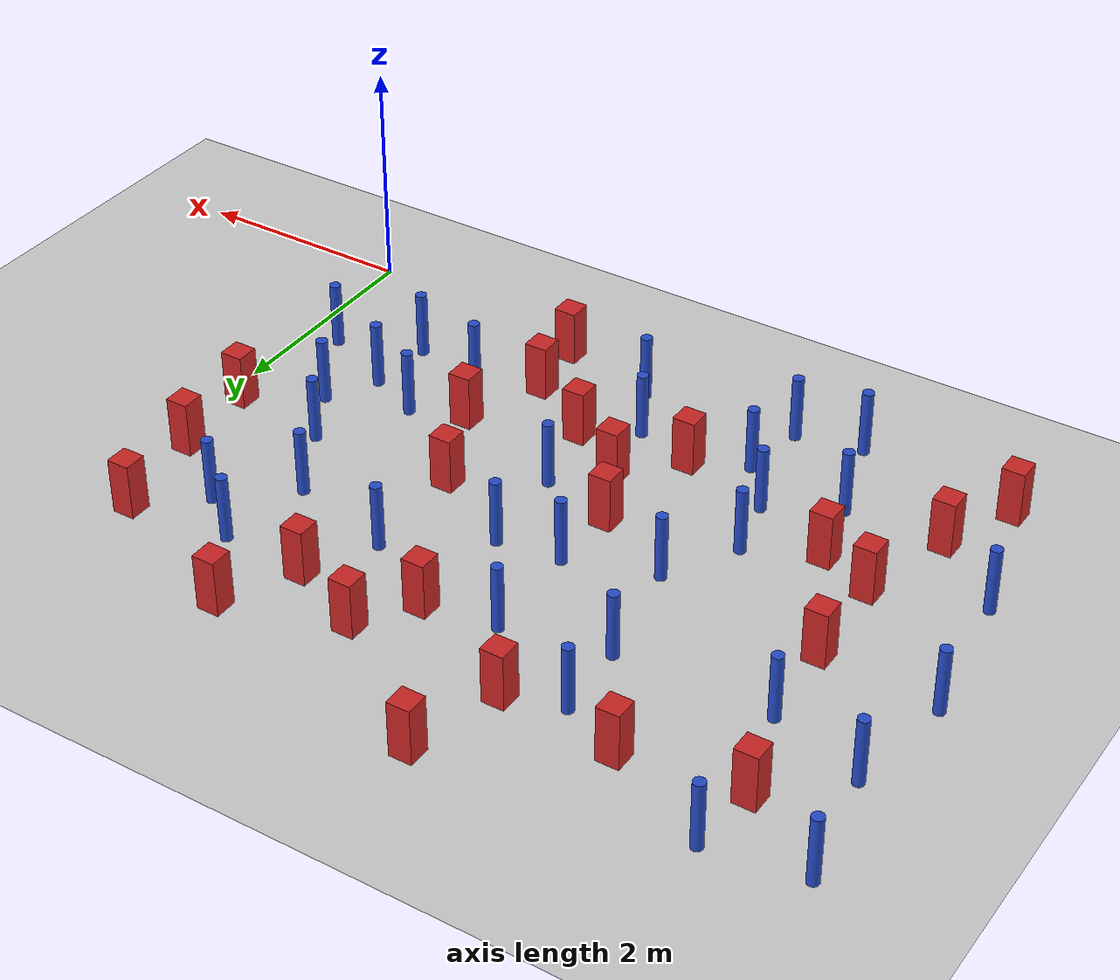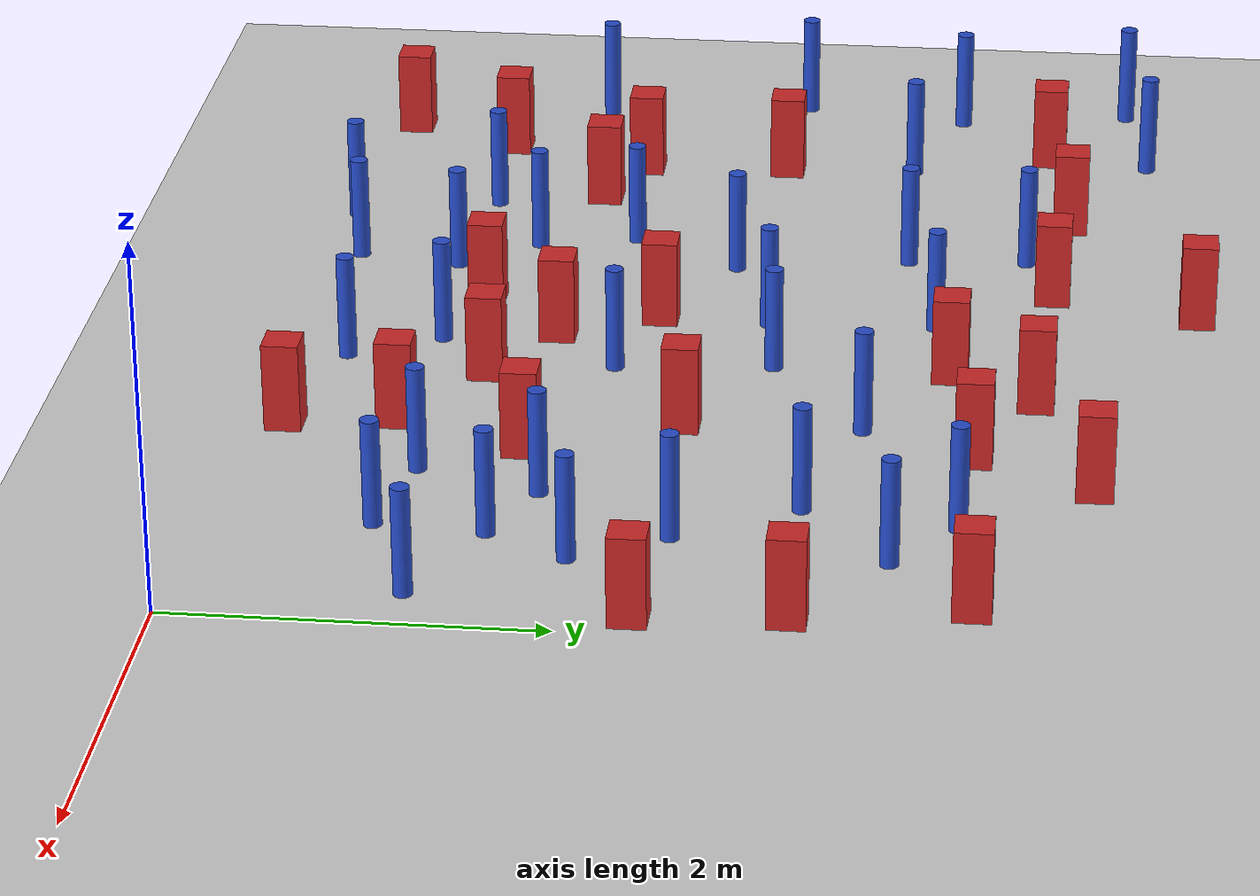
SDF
<sdf version="1.6">
 <world name="default">
  <model name="ground_plane">
   <static>1</static>
   <link name="link">
    <collision name="collision">
     <geometry><plane><normal>0 0 1</normal><size>100 100</size></plane></geometry>
     <surface><friction><ode><mu>100</mu><mu2>50</mu2></ode></friction></surface>
    </collision>
    <visual name="visual">
     <cast_shadows>0</cast_shadows>
     <geometry><plane><normal>0 0 1</normal><size>100 100</size></plane></geometry>
     <material>
      <ambient>1.0 1.0 1.0 1.0</ambient>
      <diffuse>0.8 0.8 0.8 1.0</diffuse>
      <specular>0.01 0.01 0.01 1.000000</specular>
     </material>
    </visual>
   </link>
  </model>
  <model name="pole_obstacle4">
   <static>true</static>
   <pose>-0.75053529397 1.97190595984 7.38925637345e-09 -8.47170692799e-08 1.24976765066e-08 -1.74513093016e-07</pose>
   <link name="link">
    <pose>0 0 0.3 0 -0 0</pose>
    <inertial>
     <mass>1</mass>
     <inertia><ixx>0.145833</ixx><ixy>0</ixy><ixz>0</ixz><iyy>0.145833</iyy><iyz>0</iyz><izz>0.125</izz></inertia>
    </inertial>
    <collision name="collision">
     <geometry><cylinder><radius>0.05</radius><length>.6</length></cylinder></geometry>
    </collision>
    <visual name="visual">
     <geometry><cylinder><radius>0.05</radius><length>.6</length></cylinder></geometry>
     <material>
      <script><name>Gazebo/Blue</name><uri>file://media/materials/scripts/gazebo.material</uri></script>
     </material>
    </visual>
   </link>
  </model>
  <model name="square_post_obstacle9">
   <static>true</static>
   <pose>-2.74050162465 4.29068194543 1.91545236811e-07 -7.35059704564e-06 1.12565212e-07 2.39332434364e-05</pose>
   <link name="link">
    <pose>0 0 0.25 0 -0 0</pose>
    <inertial>
     <mass>100</mass>
     <inertia>
      <ixx>0.166667</ixx>
      <ixy>0</ixy>
      <ixz>0</ixz>
      <iyy>0.166667</iyy>
      <iyz>0</iyz>
      <izz>0.166667</izz>
     </inertia>
    </inertial>
    <collision name="collision"><geometry><box><size>.2 .2 .5</size></box></geometry></collision>
    <visual name="visual">
     <geometry><box><size>.2 .2 .5</size></box></geometry>
     <material>
      <script><name>Gazebo/Red</name><uri>file://media/materials/scripts/gazebo.material</uri></script>
     </material>
    </visual>
   </link>
  </model>
  <model name="square_post_obstacle11">
   <static>true</static>
   <pose>-6.36342929081 0.339561308146 1.91545236811e-07 -7.35059704564e-06 1.12565212e-07 2.39332434364e-05</pose>
   <link name="link">
    <pose>0 0 0.25 0 -0 0</pose>
    <inertial>
     <mass>100</mass>
     <inertia>
      <ixx>0.166667</ixx>
      <ixy>0</ixy>
      <ixz>0</ixz>
      <iyy>0.166667</iyy>
      <iyz>0</iyz>
      <izz>0.166667</izz>
     </inertia>
    </inertial>
    <collision name="collision"><geometry><box><size>.2 .2 .5</size></box></geometry></collision>
    <visual name="visual">
     <geometry><box><size>.2 .2 .5</size></box></geometry>
     <material>
      <script><name>Gazebo/Red</name><uri>file://media/materials/scripts/gazebo.material</uri></script>
     </material>
    </visual>
   </link>
  </model>
  <model name="pole_obstacle12">
   <static>true</static>
   <pose>-4.62292605062 1.33828571062 7.38925637345e-09 -8.471706928e-08 1.24976765134e-08 -1.74513093015e-07</pose>
   <link name="link">
    <pose>0 0 0.3 0 -0 0</pose>
    <inertial>
     <mass>1</mass>
     <inertia><ixx>0.145833</ixx><ixy>0</ixy><ixz>0</ixz><iyy>0.145833</iyy><iyz>0</iyz><izz>0.125</izz></inertia>
    </inertial>
    <collision name="collision">
     <geometry><cylinder><radius>0.05</radius><length>.6</length></cylinder></geometry>
    </collision>
    <visual name="visual">
     <geometry><cylinder><radius>0.05</radius><length>.6</length></cylinder></geometry>
     <material>
      <script><name>Gazebo/Blue</name><uri>file://media/materials/scripts/gazebo.material</uri></script>
     </material>
    </visual>
   </link>
  </model>
  <model name="square_post_obstacle24">
   <static>true</static>
   <pose>-2.14720096334 0.276899954422 1.91545236811e-07 -7.35059704564e-06 1.12565212e-07 2.39332434364e-05</pose>
   <link name="link">
    <pose>0 0 0.25 0 -0 0</pose>
    <inertial>
     <mass>100</mass>
     <inertia>
      <ixx>0.166667</ixx>
      <ixy>0</ixy>
      <ixz>0</ixz>
      <iyy>0.166667</iyy>
      <iyz>0</iyz>
      <izz>0.166667</izz>
     </inertia>
    </inertial>
    <collision name="collision"><geometry><box><size>.2 .2 .5</size></box></geometry></collision>
    <visual name="visual">
     <geometry><box><size>.2 .2 .5</size></box></geometry>
     <material>
      <script><name>Gazebo/Red</name><uri>file://media/materials/scripts/gazebo.material</uri></script>
     </material>
    </visual>
   </link>
  </model>
  <model name="square_post_obstacle29">
   <static>true</static>
   <pose>-0.156257540047 2.35726194431 1.91545236811e-07 -7.35059704564e-06 1.12565212e-07 2.39332434364e-05</pose>
   <link name="link">
    <pose>0 0 0.25 0 -0 0</pose>
    <inertial>
     <mass>100</mass>
     <inertia>
      <ixx>0.166667</ixx>
      <ixy>0</ixy>
      <ixz>0</ixz>
      <iyy>0.166667</iyy>
      <iyz>0</iyz>
      <izz>0.166667</izz>
     </inertia>
    </inertial>
    <collision name="collision"><geometry><box><size>.2 .2 .5</size></box></geometry></collision>
    <visual name="visual">
     <geometry><box><size>.2 .2 .5</size></box></geometry>
     <material>
      <script><name>Gazebo/Red</name><uri>file://media/materials/scripts/gazebo.material</uri></script>
     </material>
    </visual>
   </link>
  </model>
  <model name="square_post_obstacle31">
   <static>true</static>
   <pose>-2.31864801103 2.40004000269 1.91545236811e-07 -7.35059704564e-06 1.12565212e-07 2.39332434364e-05</pose>
   <link name="link">
    <pose>0 0 0.25 0 -0 0</pose>
    <inertial>
     <mass>100</mass>
     <inertia>
      <ixx>0.166667</ixx>
      <ixy>0</ixy>
      <ixz>0</ixz>
      <iyy>0.166667</iyy>
      <iyz>0</iyz>
      <izz>0.166667</izz>
     </inertia>
    </inertial>
    <collision name="collision"><geometry><box><size>.2 .2 .5</size></box></geometry></collision>
    <visual name="visual">
     <geometry><box><size>.2 .2 .5</size></box></geometry>
     <material>
      <script><name>Gazebo/Red</name><uri>file://media/materials/scripts/gazebo.material</uri></script>
     </material>
    </visual>
   </link>
  </model>
  <model name="pole_obstacle24">
   <static>true</static>
   <pose>-1.40132719874 3.11840262572 7.38925637345e-09 -8.47170692799e-08 1.24976765053e-08 -1.74513093017e-07</pose>
   <link name="link">
    <pose>0 0 0.3 0 -0 0</pose>
    <inertial>
     <mass>1</mass>
     <inertia><ixx>0.145833</ixx><ixy>0</ixy><ixz>0</ixz><iyy>0.145833</iyy><iyz>0</iyz><izz>0.125</izz></inertia>
    </inertial>
    <collision name="collision">
     <geometry><cylinder><radius>0.05</radius><length>.6</length></cylinder></geometry>
    </collision>
    <visual name="visual">
     <geometry><cylinder><radius>0.05</radius><length>.6</length></cylinder></geometry>
     <material>
      <script><name>Gazebo/Blue</name><uri>file://media/materials/scripts/gazebo.material</uri></script>
     </material>
    </visual>
   </link>
  </model>
  <model name="square_post_obstacle45">
   <static>true</static>
   <pose>-5.86912737096 2.69661752641 1.91545236811e-07 -7.35059704564e-06 1.12565212e-07 2.39332434364e-05</pose>
   <link name="link">
    <pose>0 0 0.25 0 -0 0</pose>
    <inertial>
     <mass>100</mass>
     <inertia>
      <ixx>0.166667</ixx>
      <ixy>0</ixy>
      <ixz>0</ixz>
      <iyy>0.166667</iyy>
      <iyz>0</iyz>
      <izz>0.166667</izz>
     </inertia>
    </inertial>
    <collision name="collision"><geometry><box><size>.2 .2 .5</size></box></geometry></collision>
    <visual name="visual">
     <geometry><box><size>.2 .2 .5</size></box></geometry>
     <material>
      <script><name>Gazebo/Red</name><uri>file://media/materials/scripts/gazebo.material</uri></script>
     </material>
    </visual>
   </link>
  </model>
  <model name="square_post_obstacle50">
   <static>true</static>
   <pose>-2.05113072157 3.9813883755 1.91545236811e-07 -7.35059704564e-06 1.12565212e-07 2.39332434364e-05</pose>
   <link name="link">
    <pose>0 0 0.25 0 -0 0</pose>
    <inertial>
     <mass>100</mass>
     <inertia>
      <ixx>0.166667</ixx>
      <ixy>0</ixy>
      <ixz>0</ixz>
      <iyy>0.166667</iyy>
      <iyz>0</iyz>
      <izz>0.166667</izz>
     </inertia>
    </inertial>
    <collision name="collision"><geometry><box><size>.2 .2 .5</size></box></geometry></collision>
    <visual name="visual">
     <geometry><box><size>.2 .2 .5</size></box></geometry>
     <material>
      <script><name>Gazebo/Red</name><uri>file://media/materials/scripts/gazebo.material</uri></script>
     </material>
    </visual>
   </link>
  </model>
  <model name="square_post_obstacle54">
   <static>true</static>
   <pose>-3.90718365929 5.16577436458 1.91545236811e-07 -7.35059704564e-06 1.12565212e-07 2.39332434364e-05</pose>
   <link name="link">
    <pose>0 0 0.25 0 -0 0</pose>
    <inertial>
     <mass>100</mass>
     <inertia>
      <ixx>0.166667</ixx>
      <ixy>0</ixy>
      <ixz>0</ixz>
      <iyy>0.166667</iyy>
      <iyz>0</iyz>
      <izz>0.166667</izz>
     </inertia>
    </inertial>
    <collision name="collision"><geometry><box><size>.2 .2 .5</size></box></geometry></collision>
    <visual name="visual">
     <geometry><box><size>.2 .2 .5</size></box></geometry>
     <material>
      <script><name>Gazebo/Red</name><uri>file://media/materials/scripts/gazebo.material</uri></script>
     </material>
    </visual>
   </link>
  </model>
  <model name="pole_obstacle54">
   <static>true</static>
   <pose>-4.57522564573 3.50415640879 7.38925637345e-09 -8.47170692798e-08 1.24976764937e-08 -1.74513093023e-07</pose>
   <link name="link">
    <pose>0 0 0.3 0 -0 0</pose>
    <inertial>
     <mass>1</mass>
     <inertia><ixx>0.145833</ixx><ixy>0</ixy><ixz>0</ixz><iyy>0.145833</iyy><iyz>0</iyz><izz>0.125</izz></inertia>
    </inertial>
    <collision name="collision">
     <geometry><cylinder><radius>0.05</radius><length>.6</length></cylinder></geometry>
    </collision>
    <visual name="visual">
     <geometry><cylinder><radius>0.05</radius><length>.6</length></cylinder></geometry>
     <material>
      <script><name>Gazebo/Blue</name><uri>file://media/materials/scripts/gazebo.material</uri></script>
     </material>
    </visual>
   </link>
  </model>
  <model name="pole_obstacle57">
   <static>true</static>
   <pose>-1.67618679546 1.06916677958 7.38925637345e-09 -8.471706928e-08 1.24976765079e-08 -1.74513093017e-07</pose>
   <link name="link">
    <pose>0 0 0.3 0 -0 0</pose>
    <inertial>
     <mass>1</mass>
     <inertia><ixx>0.145833</ixx><ixy>0</ixy><ixz>0</ixz><iyy>0.145833</iyy><iyz>0</iyz><izz>0.125</izz></inertia>
    </inertial>
    <collision name="collision">
     <geometry><cylinder><radius>0.05</radius><length>.6</length></cylinder></geometry>
    </collision>
    <visual name="visual">
     <geometry><cylinder><radius>0.05</radius><length>.6</length></cylinder></geometry>
     <material>
      <script><name>Gazebo/Blue</name><uri>file://media/materials/scripts/gazebo.material</uri></script>
     </material>
    </visual>
   </link>
  </model>
  <model name="square_post_obstacle65">
   <static>true</static>
   <pose>-1.94325476517 1.58443841942 1.91545236811e-07 -7.35059704564e-06 1.12565212e-07 2.39332434364e-05</pose>
   <link name="link">
    <pose>0 0 0.25 0 -0 0</pose>
    <inertial>
     <mass>100</mass>
     <inertia>
      <ixx>0.166667</ixx>
      <ixy>0</ixy>
      <ixz>0</ixz>
      <iyy>0.166667</iyy>
      <iyz>0</iyz>
      <izz>0.166667</izz>
     </inertia>
    </inertial>
    <collision name="collision"><geometry><box><size>.2 .2 .5</size></box></geometry></collision>
    <visual name="visual">
     <geometry><box><size>.2 .2 .5</size></box></geometry>
     <material>
      <script><name>Gazebo/Red</name><uri>file://media/materials/scripts/gazebo.material</uri></script>
     </material>
    </visual>
   </link>
  </model>
  <model name="pole_obstacle64">
   <static>true</static>
   <pose>-4.2951970392 0.903173799367 7.38925637345e-09 -8.47170692799e-08 1.24976765038e-08 -1.74513093018e-07</pose>
   <link name="link">
    <pose>0 0 0.3 0 -0 0</pose>
    <inertial>
     <mass>1</mass>
     <inertia><ixx>0.145833</ixx><ixy>0</ixy><ixz>0</ixz><iyy>0.145833</iyy><iyz>0</iyz><izz>0.125</izz></inertia>
    </inertial>
    <collision name="collision">
     <geometry><cylinder><radius>0.05</radius><length>.6</length></cylinder></geometry>
    </collision>
    <visual name="visual">
     <geometry><cylinder><radius>0.05</radius><length>.6</length></cylinder></geometry>
     <material>
      <script><name>Gazebo/Blue</name><uri>file://media/materials/scripts/gazebo.material</uri></script>
     </material>
    </visual>
   </link>
  </model>
  <model name="square_post_obstacle72">
   <static>true</static>
   <pose>-5.15905597445 4.42697742856 1.91545236811e-07 -7.35059704564e-06 1.12565212e-07 2.39332434364e-05</pose>
   <link name="link">
    <pose>0 0 0.25 0 -0 0</pose>
    <inertial>
     <mass>100</mass>
     <inertia>
      <ixx>0.166667</ixx>
      <ixy>0</ixy>
      <ixz>0</ixz>
      <iyy>0.166667</iyy>
      <iyz>0</iyz>
      <izz>0.166667</izz>
     </inertia>
    </inertial>
    <collision name="collision"><geometry><box><size>.2 .2 .5</size></box></geometry></collision>
    <visual name="visual">
     <geometry><box><size>.2 .2 .5</size></box></geometry>
     <material>
      <script><name>Gazebo/Red</name><uri>file://media/materials/scripts/gazebo.material</uri></script>
     </material>
    </visual>
   </link>
  </model>
  <model name="square_post_obstacle74">
   <static>true</static>
   <pose>-3.83693648597 1.13790932641 1.91545236811e-07 -7.35059704564e-06 1.12565212e-07 2.39332434364e-05</pose>
   <link name="link">
    <pose>0 0 0.25 0 -0 0</pose>
    <inertial>
     <mass>100</mass>
     <inertia>
      <ixx>0.166667</ixx>
      <ixy>0</ixy>
      <ixz>0</ixz>
      <iyy>0.166667</iyy>
      <iyz>0</iyz>
      <izz>0.166667</izz>
     </inertia>
    </inertial>
    <collision name="collision"><geometry><box><size>.2 .2 .5</size></box></geometry></collision>
    <visual name="visual">
     <geometry><box><size>.2 .2 .5</size></box></geometry>
     <material>
      <script><name>Gazebo/Red</name><uri>file://media/materials/scripts/gazebo.material</uri></script>
     </material>
    </visual>
   </link>
  </model>
  <model name="pole_obstacle72">
   <static>true</static>
   <pose>-4.96477721161 0.195381901351 7.38925637345e-09 -8.471706928e-08 1.24976765151e-08 -1.74513093014e-07</pose>
   <link name="link">
    <pose>0 0 0.3 0 -0 0</pose>
    <inertial>
     <mass>1</mass>
     <inertia><ixx>0.145833</ixx><ixy>0</ixy><ixz>0</ixz><iyy>0.145833</iyy><iyz>0</iyz><izz>0.125</izz></inertia>
    </inertial>
    <collision name="collision">
     <geometry><cylinder><radius>0.05</radius><length>.6</length></cylinder></geometry>
    </collision>
    <visual name="visual">
     <geometry><cylinder><radius>0.05</radius><length>.6</length></cylinder></geometry>
     <material>
      <script><name>Gazebo/Blue</name><uri>file://media/materials/scripts/gazebo.material</uri></script>
     </material>
    </visual>
   </link>
  </model>
  <model name="pole_obstacle73">
   <static>true</static>
   <pose>-4.38709843425 0.314621887469 7.38925637345e-09 -8.47170692798e-08 1.24976765003e-08 -1.7451309302e-07</pose>
   <link name="link">
    <pose>0 0 0.3 0 -0 0</pose>
    <inertial>
     <mass>1</mass>
     <inertia><ixx>0.145833</ixx><ixy>0</ixy><ixz>0</ixz><iyy>0.145833</iyy><iyz>0</iyz><izz>0.125</izz></inertia>
    </inertial>
    <collision name="collision">
     <geometry><cylinder><radius>0.05</radius><length>.6</length></cylinder></geometry>
    </collision>
    <visual name="visual">
     <geometry><cylinder><radius>0.05</radius><length>.6</length></cylinder></geometry>
     <material>
      <script><name>Gazebo/Blue</name><uri>file://media/materials/scripts/gazebo.material</uri></script>
     </material>
    </visual>
   </link>
  </model>
  <model name="pole_obstacle79">
   <static>true</static>
   <pose>-3.08736341742 2.83496775026 7.38925637345e-09 -8.47170692798e-08 1.24976764939e-08 -1.74513093025e-07</pose>
   <link name="link">
    <pose>0 0 0.3 0 -0 0</pose>
    <inertial>
     <mass>1</mass>
     <inertia><ixx>0.145833</ixx><ixy>0</ixy><ixz>0</ixz><iyy>0.145833</iyy><iyz>0</iyz><izz>0.125</izz></inertia>
    </inertial>
    <collision name="collision">
     <geometry><cylinder><radius>0.05</radius><length>.6</length></cylinder></geometry>
    </collision>
    <visual name="visual">
     <geometry><cylinder><radius>0.05</radius><length>.6</length></cylinder></geometry>
     <material>
      <script><name>Gazebo/Blue</name><uri>file://media/materials/scripts/gazebo.material</uri></script>
     </material>
    </visual>
   </link>
  </model>
  <model name="square_post_obstacle78">
   <static>true</static>
   <pose>-2.23327106368 0.869202071408 1.91545236811e-07 -7.35059704564e-06 1.12565212e-07 2.39332434364e-05</pose>
   <link name="link">
    <pose>0 0 0.25 0 -0 0</pose>
    <inertial>
     <mass>100</mass>
     <inertia>
      <ixx>0.166667</ixx>
      <ixy>0</ixy>
      <ixz>0</ixz>
      <iyy>0.166667</iyy>
      <iyz>0</iyz>
      <izz>0.166667</izz>
     </inertia>
    </inertial>
    <collision name="collision"><geometry><box><size>.2 .2 .5</size></box></geometry></collision>
    <visual name="visual">
     <geometry><box><size>.2 .2 .5</size></box></geometry>
     <material>
      <script><name>Gazebo/Red</name><uri>file://media/materials/scripts/gazebo.material</uri></script>
     </material>
    </visual>
   </link>
  </model>
  <model name="pole_obstacle85">
   <static>true</static>
   <pose>-5.91340965436 3.46501152392 7.38925637345e-09 -8.47170692798e-08 1.24976764937e-08 -1.74513093023e-07</pose>
   <link name="link">
    <pose>0 0 0.3 0 -0 0</pose>
    <inertial>
     <mass>1</mass>
     <inertia><ixx>0.145833</ixx><ixy>0</ixy><ixz>0</ixz><iyy>0.145833</iyy><iyz>0</iyz><izz>0.125</izz></inertia>
    </inertial>
    <collision name="collision">
     <geometry><cylinder><radius>0.05</radius><length>.6</length></cylinder></geometry>
    </collision>
    <visual name="visual">
     <geometry><cylinder><radius>0.05</radius><length>.6</length></cylinder></geometry>
     <material>
      <script><name>Gazebo/Blue</name><uri>file://media/materials/scripts/gazebo.material</uri></script>
     </material>
    </visual>
   </link>
  </model>
  <model name="square_post_obstacle81">
   <static>true</static>
   <pose>-6.07745499159 0.99381337129 1.91545236811e-07 -7.35059704564e-06 1.12565212e-07 2.39332434364e-05</pose>
   <link name="link">
    <pose>0 0 0.25 0 -0 0</pose>
    <inertial>
     <mass>100</mass>
     <inertia>
      <ixx>0.166667</ixx>
      <ixy>0</ixy>
      <ixz>0</ixz>
      <iyy>0.166667</iyy>
      <iyz>0</iyz>
      <izz>0.166667</izz>
     </inertia>
    </inertial>
    <collision name="collision"><geometry><box><size>.2 .2 .5</size></box></geometry></collision>
    <visual name="visual">
     <geometry><box><size>.2 .2 .5</size></box></geometry>
     <material>
      <script><name>Gazebo/Red</name><uri>file://media/materials/scripts/gazebo.material</uri></script>
     </material>
    </visual>
   </link>
  </model>
  <model name="square_post_obstacle82">
   <static>true</static>
   <pose>-3.06060975111 3.8110474315 1.91545236811e-07 -7.35059704564e-06 1.12565212e-07 2.39332434364e-05</pose>
   <link name="link">
    <pose>0 0 0.25 0 -0 0</pose>
    <inertial>
     <mass>100</mass>
     <inertia>
      <ixx>0.166667</ixx>
      <ixy>0</ixy>
      <ixz>0</ixz>
      <iyy>0.166667</iyy>
      <iyz>0</iyz>
      <izz>0.166667</izz>
     </inertia>
    </inertial>
    <collision name="collision"><geometry><box><size>.2 .2 .5</size></box></geometry></collision>
    <visual name="visual">
     <geometry><box><size>.2 .2 .5</size></box></geometry>
     <material>
      <script><name>Gazebo/Red</name><uri>file://media/materials/scripts/gazebo.material</uri></script>
     </material>
    </visual>
   </link>
  </model>
  <model name="pole_obstacle90">
   <static>true</static>
   <pose>-6.70700598225 1.5238169817 7.38925637345e-09 -8.471706928e-08 1.24976765134e-08 -1.74513093015e-07</pose>
   <link name="link">
    <pose>0 0 0.3 0 -0 0</pose>
    <inertial>
     <mass>1</mass>
     <inertia><ixx>0.145833</ixx><ixy>0</ixy><ixz>0</ixz><iyy>0.145833</iyy><iyz>0</iyz><izz>0.125</izz></inertia>
    </inertial>
    <collision name="collision">
     <geometry><cylinder><radius>0.05</radius><length>.6</length></cylinder></geometry>
    </collision>
    <visual name="visual">
     <geometry><cylinder><radius>0.05</radius><length>.6</length></cylinder></geometry>
     <material>
      <script><name>Gazebo/Blue</name><uri>file://media/materials/scripts/gazebo.material</uri></script>
     </material>
    </visual>
   </link>
  </model>
  <model name="pole_obstacle92">
   <static>true</static>
   <pose>-4.39818850485 2.51587769652 7.38925637345e-09 -8.47170692798e-08 1.24976764937e-08 -1.74513093023e-07</pose>
   <link name="link">
    <pose>0 0 0.3 0 -0 0</pose>
    <inertial>
     <mass>1</mass>
     <inertia><ixx>0.145833</ixx><ixy>0</ixy><ixz>0</ixz><iyy>0.145833</iyy><iyz>0</iyz><izz>0.125</izz></inertia>
    </inertial>
    <collision name="collision">
     <geometry><cylinder><radius>0.05</radius><length>.6</length></cylinder></geometry>
    </collision>
    <visual name="visual">
     <geometry><cylinder><radius>0.05</radius><length>.6</length></cylinder></geometry>
     <material>
      <script><name>Gazebo/Blue</name><uri>file://media/materials/scripts/gazebo.material</uri></script>
     </material>
    </visual>
   </link>
  </model>
  <model name="pole_obstacle94">
   <static>true</static>
   <pose>-3.64505518364 2.76328638376 7.38925637345e-09 -8.47170692798e-08 1.24976764939e-08 -1.74513093025e-07</pose>
   <link name="link">
    <pose>0 0 0.3 0 -0 0</pose>
    <inertial>
     <mass>1</mass>
     <inertia><ixx>0.145833</ixx><ixy>0</ixy><ixz>0</ixz><iyy>0.145833</iyy><iyz>0</iyz><izz>0.125</izz></inertia>
    </inertial>
    <collision name="collision">
     <geometry><cylinder><radius>0.05</radius><length>.6</length></cylinder></geometry>
    </collision>
    <visual name="visual">
     <geometry><cylinder><radius>0.05</radius><length>.6</length></cylinder></geometry>
     <material>
      <script><name>Gazebo/Blue</name><uri>file://media/materials/scripts/gazebo.material</uri></script>
     </material>
    </visual>
   </link>
  </model>
  <model name="square_post_obstacle87">
   <static>true</static>
   <pose>-2.86172564171 1.268861844 1.91545236811e-07 -7.35059704564e-06 1.12565212e-07 2.39332434364e-05</pose>
   <link name="link">
    <pose>0 0 0.25 0 -0 0</pose>
    <inertial>
     <mass>100</mass>
     <inertia>
      <ixx>0.166667</ixx>
      <ixy>0</ixy>
      <ixz>0</ixz>
      <iyy>0.166667</iyy>
      <iyz>0</iyz>
      <izz>0.166667</izz>
     </inertia>
    </inertial>
    <collision name="collision"><geometry><box><size>.2 .2 .5</size></box></geometry></collision>
    <visual name="visual">
     <geometry><box><size>.2 .2 .5</size></box></geometry>
     <material>
      <script><name>Gazebo/Red</name><uri>file://media/materials/scripts/gazebo.material</uri></script>
     </material>
    </visual>
   </link>
  </model>
  <model name="pole_obstacle104">
   <static>true</static>
   <pose>-6.09014546299 4.87315624739 7.38925637345e-09 -8.47170692796e-08 1.24976764786e-08 -1.74513093032e-07</pose>
   <link name="link">
    <pose>0 0 0.3 0 -0 0</pose>
    <inertial>
     <mass>1</mass>
     <inertia><ixx>0.145833</ixx><ixy>0</ixy><ixz>0</ixz><iyy>0.145833</iyy><iyz>0</iyz><izz>0.125</izz></inertia>
    </inertial>
    <collision name="collision">
     <geometry><cylinder><radius>0.05</radius><length>.6</length></cylinder></geometry>
    </collision>
    <visual name="visual">
     <geometry><cylinder><radius>0.05</radius><length>.6</length></cylinder></geometry>
     <material>
      <script><name>Gazebo/Blue</name><uri>file://media/materials/scripts/gazebo.material</uri></script>
     </material>
    </visual>
   </link>
  </model>
  <model name="pole_obstacle108">
   <static>true</static>
   <pose>-3.0079295225 1.96256701853 7.38925637345e-09 -8.47170692793e-08 1.24976764428e-08 -1.74513093041e-07</pose>
   <link name="link">
    <pose>0 0 0.3 0 -0 0</pose>
    <inertial>
     <mass>1</mass>
     <inertia><ixx>0.145833</ixx><ixy>0</ixy><ixz>0</ixz><iyy>0.145833</iyy><iyz>0</iyz><izz>0.125</izz></inertia>
    </inertial>
    <collision name="collision">
     <geometry><cylinder><radius>0.05</radius><length>.6</length></cylinder></geometry>
    </collision>
    <visual name="visual">
     <geometry><cylinder><radius>0.05</radius><length>.6</length></cylinder></geometry>
     <material>
      <script><name>Gazebo/Blue</name><uri>file://media/materials/scripts/gazebo.material</uri></script>
     </material>
    </visual>
   </link>
  </model>
  <model name="square_post_obstacle96">
   <static>true</static>
   <pose>-3.39512595008 1.60033203194 1.91545236811e-07 -7.35059704564e-06 1.12565212e-07 2.39332434364e-05</pose>
   <link name="link">
    <pose>0 0 0.25 0 -0 0</pose>
    <inertial>
     <mass>100</mass>
     <inertia>
      <ixx>0.166667</ixx>
      <ixy>0</ixy>
      <ixz>0</ixz>
      <iyy>0.166667</iyy>
      <iyz>0</iyz>
      <izz>0.166667</izz>
     </inertia>
    </inertial>
    <collision name="collision"><geometry><box><size>.2 .2 .5</size></box></geometry></collision>
    <visual name="visual">
     <geometry><box><size>.2 .2 .5</size></box></geometry>
     <material>
      <script><name>Gazebo/Red</name><uri>file://media/materials/scripts/gazebo.material</uri></script>
     </material>
    </visual>
   </link>
  </model>
  <model name="pole_obstacle111">
   <static>true</static>
   <pose>-3.0235765314 0.466484024352 7.38925637345e-09 -8.47170692801e-08 1.24976765209e-08 -1.74513093011e-07</pose>
   <link name="link">
    <pose>0 0 0.3 0 -0 0</pose>
    <inertial>
     <mass>1</mass>
     <inertia><ixx>0.145833</ixx><ixy>0</ixy><ixz>0</ixz><iyy>0.145833</iyy><iyz>0</iyz><izz>0.125</izz></inertia>
    </inertial>
    <collision name="collision">
     <geometry><cylinder><radius>0.05</radius><length>.6</length></cylinder></geometry>
    </collision>
    <visual name="visual">
     <geometry><cylinder><radius>0.05</radius><length>.6</length></cylinder></geometry>
     <material>
      <script><name>Gazebo/Blue</name><uri>file://media/materials/scripts/gazebo.material</uri></script>
     </material>
    </visual>
   </link>
  </model>
  <model name="pole_obstacle112">
   <static>true</static>
   <pose>-6.72551076548 3.73088490796 7.38925637345e-09 -8.47170692798e-08 1.24976764937e-08 -1.74513093023e-07</pose>
   <link name="link">
    <pose>0 0 0.3 0 -0 0</pose>
    <inertial>
     <mass>1</mass>
     <inertia><ixx>0.145833</ixx><ixy>0</ixy><ixz>0</ixz><iyy>0.145833</iyy><iyz>0</iyz><izz>0.125</izz></inertia>
    </inertial>
    <collision name="collision">
     <geometry><cylinder><radius>0.05</radius><length>.6</length></cylinder></geometry>
    </collision>
    <visual name="visual">
     <geometry><cylinder><radius>0.05</radius><length>.6</length></cylinder></geometry>
     <material>
      <script><name>Gazebo/Blue</name><uri>file://media/materials/scripts/gazebo.material</uri></script>
     </material>
    </visual>
   </link>
  </model>
  <model name="pole_obstacle115">
   <static>true</static>
   <pose>-3.68496593204 3.699500266 7.38925637345e-09 -8.47170692798e-08 1.24976764939e-08 -1.74513093025e-07</pose>
   <link name="link">
    <pose>0 0 0.3 0 -0 0</pose>
    <inertial>
     <mass>1</mass>
     <inertia><ixx>0.145833</ixx><ixy>0</ixy><ixz>0</ixz><iyy>0.145833</iyy><iyz>0</iyz><izz>0.125</izz></inertia>
    </inertial>
    <collision name="collision">
     <geometry><cylinder><radius>0.05</radius><length>.6</length></cylinder></geometry>
    </collision>
    <visual name="visual">
     <geometry><cylinder><radius>0.05</radius><length>.6</length></cylinder></geometry>
     <material>
      <script><name>Gazebo/Blue</name><uri>file://media/materials/scripts/gazebo.material</uri></script>
     </material>
    </visual>
   </link>
  </model>
  <model name="pole_obstacle120">
   <static>true</static>
   <pose>-4.74958864953 1.89649233311 7.38925637345e-09 -8.471706928e-08 1.24976765134e-08 -1.74513093015e-07</pose>
   <link name="link">
    <pose>0 0 0.3 0 -0 0</pose>
    <inertial>
     <mass>1</mass>
     <inertia><ixx>0.145833</ixx><ixy>0</ixy><ixz>0</ixz><iyy>0.145833</iyy><iyz>0</iyz><izz>0.125</izz></inertia>
    </inertial>
    <collision name="collision">
     <geometry><cylinder><radius>0.05</radius><length>.6</length></cylinder></geometry>
    </collision>
    <visual name="visual">
     <geometry><cylinder><radius>0.05</radius><length>.6</length></cylinder></geometry>
     <material>
      <script><name>Gazebo/Blue</name><uri>file://media/materials/scripts/gazebo.material</uri></script>
     </material>
    </visual>
   </link>
  </model>
  <model name="pole_obstacle124">
   <static>true</static>
   <pose>-6.88121440331 2.76149243064 7.38925637345e-09 -8.47170692798e-08 1.24976764937e-08 -1.74513093023e-07</pose>
   <link name="link">
    <pose>0 0 0.3 0 -0 0</pose>
    <inertial>
     <mass>1</mass>
     <inertia><ixx>0.145833</ixx><ixy>0</ixy><ixz>0</ixz><iyy>0.145833</iyy><iyz>0</iyz><izz>0.125</izz></inertia>
    </inertial>
    <collision name="collision">
     <geometry><cylinder><radius>0.05</radius><length>.6</length></cylinder></geometry>
    </collision>
    <visual name="visual">
     <geometry><cylinder><radius>0.05</radius><length>.6</length></cylinder></geometry>
     <material>
      <script><name>Gazebo/Blue</name><uri>file://media/materials/scripts/gazebo.material</uri></script>
     </material>
    </visual>
   </link>
  </model>
  <model name="pole_obstacle131">
   <static>true</static>
   <pose>-0.987112999868 1.52915309288 7.38925637345e-09 -8.47170692798e-08 1.2497676504e-08 -1.74513093019e-07</pose>
   <link name="link">
    <pose>0 0 0.3 0 -0 0</pose>
    <inertial>
     <mass>1</mass>
     <inertia><ixx>0.145833</ixx><ixy>0</ixy><ixz>0</ixz><iyy>0.145833</iyy><iyz>0</iyz><izz>0.125</izz></inertia>
    </inertial>
    <collision name="collision">
     <geometry><cylinder><radius>0.05</radius><length>.6</length></cylinder></geometry>
    </collision>
    <visual name="visual">
     <geometry><cylinder><radius>0.05</radius><length>.6</length></cylinder></geometry>
     <material>
      <script><name>Gazebo/Blue</name><uri>file://media/materials/scripts/gazebo.material</uri></script>
     </material>
    </visual>
   </link>
  </model>
  <model name="pole_obstacle136">
   <static>true</static>
   <pose>-1.46029759138 1.73915464593 7.38925637345e-09 -8.471706928e-08 1.24976765079e-08 -1.74513093017e-07</pose>
   <link name="link">
    <pose>0 0 0.3 0 -0 0</pose>
    <inertial>
     <mass>1</mass>
     <inertia><ixx>0.145833</ixx><ixy>0</ixy><ixz>0</ixz><iyy>0.145833</iyy><iyz>0</iyz><izz>0.125</izz></inertia>
    </inertial>
    <collision name="collision">
     <geometry><cylinder><radius>0.05</radius><length>.6</length></cylinder></geometry>
    </collision>
    <visual name="visual">
     <geometry><cylinder><radius>0.05</radius><length>.6</length></cylinder></geometry>
     <material>
      <script><name>Gazebo/Blue</name><uri>file://media/materials/scripts/gazebo.material</uri></script>
     </material>
    </visual>
   </link>
  </model>
  <model name="square_post_obstacle118">
   <static>true</static>
   <pose>-0.218139517069 3.13630341641 1.91545236811e-07 -7.35059704564e-06 1.12565212e-07 2.39332434364e-05</pose>
   <link name="link">
    <pose>0 0 0.25 0 -0 0</pose>
    <inertial>
     <mass>100</mass>
     <inertia>
      <ixx>0.166667</ixx>
      <ixy>0</ixy>
      <ixz>0</ixz>
      <iyy>0.166667</iyy>
      <iyz>0</iyz>
      <izz>0.166667</izz>
     </inertia>
    </inertial>
    <collision name="collision"><geometry><box><size>.2 .2 .5</size></box></geometry></collision>
    <visual name="visual">
     <geometry><box><size>.2 .2 .5</size></box></geometry>
     <material>
      <script><name>Gazebo/Red</name><uri>file://media/materials/scripts/gazebo.material</uri></script>
     </material>
    </visual>
   </link>
  </model>
  <model name="pole_obstacle137">
   <static>true</static>
   <pose>-0.313622576142 1.20833844272 7.38925637345e-09 -8.47170692798e-08 1.24976765025e-08 -1.74513093018e-07</pose>
   <link name="link">
    <pose>0 0 0.3 0 -0 0</pose>
    <inertial>
     <mass>1</mass>
     <inertia><ixx>0.145833</ixx><ixy>0</ixy><ixz>0</ixz><iyy>0.145833</iyy><iyz>0</iyz><izz>0.125</izz></inertia>
    </inertial>
    <collision name="collision">
     <geometry><cylinder><radius>0.05</radius><length>.6</length></cylinder></geometry>
    </collision>
    <visual name="visual">
     <geometry><cylinder><radius>0.05</radius><length>.6</length></cylinder></geometry>
     <material>
      <script><name>Gazebo/Blue</name><uri>file://media/materials/scripts/gazebo.material</uri></script>
     </material>
    </visual>
   </link>
  </model>
  <model name="square_post_obstacle132">
   <static>true</static>
   <pose>-1.72328964582 4.62413059294 1.91545236811e-07 -7.35059704564e-06 1.12565212e-07 2.39332434364e-05</pose>
   <link name="link">
    <pose>0 0 0.25 0 -0 0</pose>
    <inertial>
     <mass>100</mass>
     <inertia>
      <ixx>0.166667</ixx>
      <ixy>0</ixy>
      <ixz>0</ixz>
      <iyy>0.166667</iyy>
      <iyz>0</iyz>
      <izz>0.166667</izz>
     </inertia>
    </inertial>
    <collision name="collision"><geometry><box><size>.2 .2 .5</size></box></geometry></collision>
    <visual name="visual">
     <geometry><box><size>.2 .2 .5</size></box></geometry>
     <material>
      <script><name>Gazebo/Red</name><uri>file://media/materials/scripts/gazebo.material</uri></script>
     </material>
    </visual>
   </link>
  </model>
  <model name="square_post_obstacle139">
   <static>true</static>
   <pose>-6.17028208846 4.27921297826 1.91545236811e-07 -7.35059704564e-06 1.12565212e-07 2.39332434364e-05</pose>
   <link name="link">
    <pose>0 0 0.25 0 -0 0</pose>
    <inertial>
     <mass>100</mass>
     <inertia>
      <ixx>0.166667</ixx>
      <ixy>0</ixy>
      <ixz>0</ixz>
      <iyy>0.166667</iyy>
      <iyz>0</iyz>
      <izz>0.166667</izz>
     </inertia>
    </inertial>
    <collision name="collision"><geometry><box><size>.2 .2 .5</size></box></geometry></collision>
    <visual name="visual">
     <geometry><box><size>.2 .2 .5</size></box></geometry>
     <material>
      <script><name>Gazebo/Red</name><uri>file://media/materials/scripts/gazebo.material</uri></script>
     </material>
    </visual>
   </link>
  </model>
  <model name="pole_obstacle155">
   <static>true</static>
   <pose>-6.90387626817 4.73940212859 7.38925637345e-09 -8.47170692796e-08 1.24976764786e-08 -1.74513093032e-07</pose>
   <link name="link">
    <pose>0 0 0.3 0 -0 0</pose>
    <inertial>
     <mass>1</mass>
     <inertia><ixx>0.145833</ixx><ixy>0</ixy><ixz>0</ixz><iyy>0.145833</iyy><iyz>0</iyz><izz>0.125</izz></inertia>
    </inertial>
    <collision name="collision">
     <geometry><cylinder><radius>0.05</radius><length>.6</length></cylinder></geometry>
    </collision>
    <visual name="visual">
     <geometry><cylinder><radius>0.05</radius><length>.6</length></cylinder></geometry>
     <material>
      <script><name>Gazebo/Blue</name><uri>file://media/materials/scripts/gazebo.material</uri></script>
     </material>
    </visual>
   </link>
  </model>
  <model name="square_post_obstacle147">
   <static>true</static>
   <pose>-0.378874167778 4.04087323291 1.91545236811e-07 -7.35059704564e-06 1.12565212e-07 2.39332434364e-05</pose>
   <link name="link">
    <pose>0 0 0.25 0 -0 0</pose>
    <inertial>
     <mass>100</mass>
     <inertia>
      <ixx>0.166667</ixx>
      <ixy>0</ixy>
      <ixz>0</ixz>
      <iyy>0.166667</iyy>
      <iyz>0</iyz>
      <izz>0.166667</izz>
     </inertia>
    </inertial>
    <collision name="collision"><geometry><box><size>.2 .2 .5</size></box></geometry></collision>
    <visual name="visual">
     <geometry><box><size>.2 .2 .5</size></box></geometry>
     <material>
      <script><name>Gazebo/Red</name><uri>file://media/materials/scripts/gazebo.material</uri></script>
     </material>
    </visual>
   </link>
  </model>
  <model name="pole_obstacle158">
   <static>true</static>
   <pose>-2.34068117959 3.37456024272 7.38925637345e-09 -8.47170692798e-08 1.24976764939e-08 -1.74513093025e-07</pose>
   <link name="link">
    <pose>0 0 0.3 0 -0 0</pose>
    <inertial>
     <mass>1</mass>
     <inertia><ixx>0.145833</ixx><ixy>0</ixy><ixz>0</ixz><iyy>0.145833</iyy><iyz>0</iyz><izz>0.125</izz></inertia>
    </inertial>
    <collision name="collision">
     <geometry><cylinder><radius>0.05</radius><length>.6</length></cylinder></geometry>
    </collision>
    <visual name="visual">
     <geometry><cylinder><radius>0.05</radius><length>.6</length></cylinder></geometry>
     <material>
      <script><name>Gazebo/Blue</name><uri>file://media/materials/scripts/gazebo.material</uri></script>
     </material>
    </visual>
   </link>
  </model>
  <model name="pole_obstacle159">
   <static>true</static>
   <pose>-1.03534202115 0.936207359389 7.38925637345e-09 -8.47170692799e-08 1.24976765069e-08 -1.74513093017e-07</pose>
   <link name="link">
    <pose>0 0 0.3 0 -0 0</pose>
    <inertial>
     <mass>1</mass>
     <inertia><ixx>0.145833</ixx><ixy>0</ixy><ixz>0</ixz><iyy>0.145833</iyy><iyz>0</iyz><izz>0.125</izz></inertia>
    </inertial>
    <collision name="collision">
     <geometry><cylinder><radius>0.05</radius><length>.6</length></cylinder></geometry>
    </collision>
    <visual name="visual">
     <geometry><cylinder><radius>0.05</radius><length>.6</length></cylinder></geometry>
     <material>
      <script><name>Gazebo/Blue</name><uri>file://media/materials/scripts/gazebo.material</uri></script>
     </material>
    </visual>
   </link>
  </model>
  <model name="square_post_obstacle157">
   <static>true</static>
   <pose>-5.82889775743 1.84261788223 1.91545236811e-07 -7.35059704564e-06 1.12565212e-07 2.39332434364e-05</pose>
   <link name="link">
    <pose>0 0 0.25 0 -0 0</pose>
    <inertial>
     <mass>100</mass>
     <inertia>
      <ixx>0.166667</ixx>
      <ixy>0</ixy>
      <ixz>0</ixz>
      <iyy>0.166667</iyy>
      <iyz>0</iyz>
      <izz>0.166667</izz>
     </inertia>
    </inertial>
    <collision name="collision"><geometry><box><size>.2 .2 .5</size></box></geometry></collision>
    <visual name="visual">
     <geometry><box><size>.2 .2 .5</size></box></geometry>
     <material>
      <script><name>Gazebo/Red</name><uri>file://media/materials/scripts/gazebo.material</uri></script>
     </material>
    </visual>
   </link>
  </model>
  <model name="pole_obstacle166">
   <static>true</static>
   <pose>-1.2668207055 3.93279596137 7.38925637345e-09 -8.47170692799e-08 1.24976765053e-08 -1.74513093017e-07</pose>
   <link name="link">
    <pose>0 0 0.3 0 -0 0</pose>
    <inertial>
     <mass>1</mass>
     <inertia><ixx>0.145833</ixx><ixy>0</ixy><ixz>0</ixz><iyy>0.145833</iyy><iyz>0</iyz><izz>0.125</izz></inertia>
    </inertial>
    <collision name="collision">
     <geometry><cylinder><radius>0.05</radius><length>.6</length></cylinder></geometry>
    </collision>
    <visual name="visual">
     <geometry><cylinder><radius>0.05</radius><length>.6</length></cylinder></geometry>
     <material>
      <script><name>Gazebo/Blue</name><uri>file://media/materials/scripts/gazebo.material</uri></script>
     </material>
    </visual>
   </link>
  </model>
  <model name="square_post_obstacle161">
   <static>true</static>
   <pose>-4.13608142635 4.3456915622 1.91545236811e-07 -7.35059704564e-06 1.12565212e-07 2.39332434364e-05</pose>
   <link name="link">
    <pose>0 0 0.25 0 -0 0</pose>
    <inertial>
     <mass>100</mass>
     <inertia>
      <ixx>0.166667</ixx>
      <ixy>0</ixy>
      <ixz>0</ixz>
      <iyy>0.166667</iyy>
      <iyz>0</iyz>
      <izz>0.166667</izz>
     </inertia>
    </inertial>
    <collision name="collision"><geometry><box><size>.2 .2 .5</size></box></geometry></collision>
    <visual name="visual">
     <geometry><box><size>.2 .2 .5</size></box></geometry>
     <material>
      <script><name>Gazebo/Red</name><uri>file://media/materials/scripts/gazebo.material</uri></script>
     </material>
    </visual>
   </link>
  </model>
  <model name="square_post_obstacle180">
   <static>true</static>
   <pose>-3.66884872619 2.14942913618 1.91545236811e-07 -7.35059704564e-06 1.12565212e-07 2.39332434364e-05</pose>
   <link name="link">
    <pose>0 0 0.25 0 -0 0</pose>
    <inertial>
     <mass>100</mass>
     <inertia>
      <ixx>0.166667</ixx>
      <ixy>0</ixy>
      <ixz>0</ixz>
      <iyy>0.166667</iyy>
      <iyz>0</iyz>
      <izz>0.166667</izz>
     </inertia>
    </inertial>
    <collision name="collision"><geometry><box><size>.2 .2 .5</size></box></geometry></collision>
    <visual name="visual">
     <geometry><box><size>.2 .2 .5</size></box></geometry>
     <material>
      <script><name>Gazebo/Red</name><uri>file://media/materials/scripts/gazebo.material</uri></script>
     </material>
    </visual>
   </link>
  </model>
  <model name="pole_obstacle189">
   <static>true</static>
   <pose>-3.28793366313 0.964560207229 7.38925637345e-09 -8.47170692799e-08 1.24976765074e-08 -1.74513093017e-07</pose>
   <link name="link">
    <pose>0 0 0.3 0 -0 0</pose>
    <inertial>
     <mass>1</mass>
     <inertia><ixx>0.145833</ixx><ixy>0</ixy><ixz>0</ixz><iyy>0.145833</iyy><iyz>0</iyz><izz>0.125</izz></inertia>
    </inertial>
    <collision name="collision">
     <geometry><cylinder><radius>0.05</radius><length>.6</length></cylinder></geometry>
    </collision>
    <visual name="visual">
     <geometry><cylinder><radius>0.05</radius><length>.6</length></cylinder></geometry>
     <material>
      <script><name>Gazebo/Blue</name><uri>file://media/materials/scripts/gazebo.material</uri></script>
     </material>
    </visual>
   </link>
  </model>
  <model name="pole_obstacle205">
   <static>true</static>
   <pose>-4.61741964958 4.18442354888 7.38925637345e-09 -8.47170692796e-08 1.24976764786e-08 -1.74513093032e-07</pose>
   <link name="link">
    <pose>0 0 0.3 0 -0 0</pose>
    <inertial>
     <mass>1</mass>
     <inertia><ixx>0.145833</ixx><ixy>0</ixy><ixz>0</ixz><iyy>0.145833</iyy><iyz>0</iyz><izz>0.125</izz></inertia>
    </inertial>
    <collision name="collision">
     <geometry><cylinder><radius>0.05</radius><length>.6</length></cylinder></geometry>
    </collision>
    <visual name="visual">
     <geometry><cylinder><radius>0.05</radius><length>.6</length></cylinder></geometry>
     <material>
      <script><name>Gazebo/Blue</name><uri>file://media/materials/scripts/gazebo.material</uri></script>
     </material>
    </visual>
   </link>
  </model>
  <model name="pole_obstacle212">
   <static>true</static>
   <pose>-1.02998967968 2.47142995869 7.38925637345e-09 -8.47170692799e-08 1.24976765076e-08 -1.74513093016e-07</pose>
   <link name="link">
    <pose>0 0 0.3 0 -0 0</pose>
    <inertial>
     <mass>1</mass>
     <inertia><ixx>0.145833</ixx><ixy>0</ixy><ixz>0</ixz><iyy>0.145833</iyy><iyz>0</iyz><izz>0.125</izz></inertia>
    </inertial>
    <collision name="collision">
     <geometry><cylinder><radius>0.05</radius><length>.6</length></cylinder></geometry>
    </collision>
    <visual name="visual">
     <geometry><cylinder><radius>0.05</radius><length>.6</length></cylinder></geometry>
     <material>
      <script><name>Gazebo/Blue</name><uri>file://media/materials/scripts/gazebo.material</uri></script>
     </material>
    </visual>
   </link>
  </model>
  <model name="pole_obstacle213">
   <static>true</static>
   <pose>-0.85381379066 3.60298749014 7.38925637345e-09 -8.47170692799e-08 1.2497676509e-08 -1.74513093016e-07</pose>
   <link name="link">
    <pose>0 0 0.3 0 -0 0</pose>
    <inertial>
     <mass>1</mass>
     <inertia><ixx>0.145833</ixx><ixy>0</ixy><ixz>0</ixz><iyy>0.145833</iyy><iyz>0</iyz><izz>0.125</izz></inertia>
    </inertial>
    <collision name="collision">
     <geometry><cylinder><radius>0.05</radius><length>.6</length></cylinder></geometry>
    </collision>
    <visual name="visual">
     <geometry><cylinder><radius>0.05</radius><length>.6</length></cylinder></geometry>
     <material>
      <script><name>Gazebo/Blue</name><uri>file://media/materials/scripts/gazebo.material</uri></script>
     </material>
    </visual>
   </link>
  </model>
  <model name="pole_obstacle214">
   <static>true</static>
   <pose>-5.21052261371 1.01506805786 7.38925637345e-09 -8.47170692801e-08 1.24976765139e-08 -1.74513093014e-07</pose>
   <link name="link">
    <pose>0 0 0.3 0 -0 0</pose>
    <inertial>
     <mass>1</mass>
     <inertia><ixx>0.145833</ixx><ixy>0</ixy><ixz>0</ixz><iyy>0.145833</iyy><iyz>0</iyz><izz>0.125</izz></inertia>
    </inertial>
    <collision name="collision">
     <geometry><cylinder><radius>0.05</radius><length>.6</length></cylinder></geometry>
    </collision>
    <visual name="visual">
     <geometry><cylinder><radius>0.05</radius><length>.6</length></cylinder></geometry>
     <material>
      <script><name>Gazebo/Blue</name><uri>file://media/materials/scripts/gazebo.material</uri></script>
     </material>
    </visual>
   </link>
  </model>
  <model name="square_post_obstacle213">
   <static>true</static>
   <pose>-5.3530000352 1.64016998808 1.91545236811e-07 -7.35059704564e-06 1.12565212e-07 2.39332434364e-05</pose>
   <link name="link">
    <pose>0 0 0.25 0 -0 0</pose>
    <inertial>
     <mass>100</mass>
     <inertia>
      <ixx>0.166667</ixx>
      <ixy>0</ixy>
      <ixz>0</ixz>
      <iyy>0.166667</iyy>
      <iyz>0</iyz>
      <izz>0.166667</izz>
     </inertia>
    </inertial>
    <collision name="collision"><geometry><box><size>.2 .2 .5</size></box></geometry></collision>
    <visual name="visual">
     <geometry><box><size>.2 .2 .5</size></box></geometry>
     <material>
      <script><name>Gazebo/Red</name><uri>file://media/materials/scripts/gazebo.material</uri></script>
     </material>
    </visual>
   </link>
  </model>
 </world>
</sdf>
